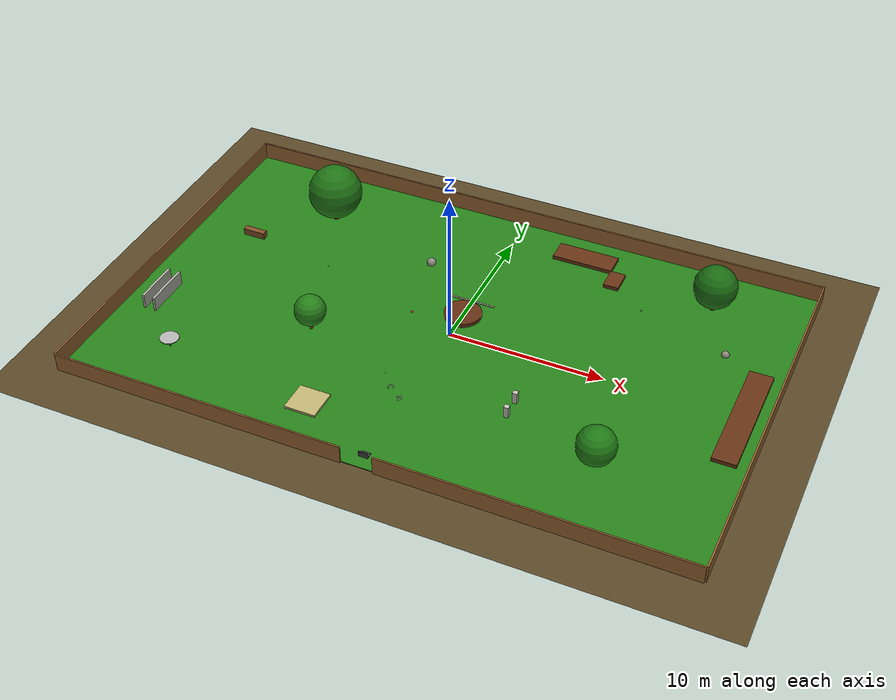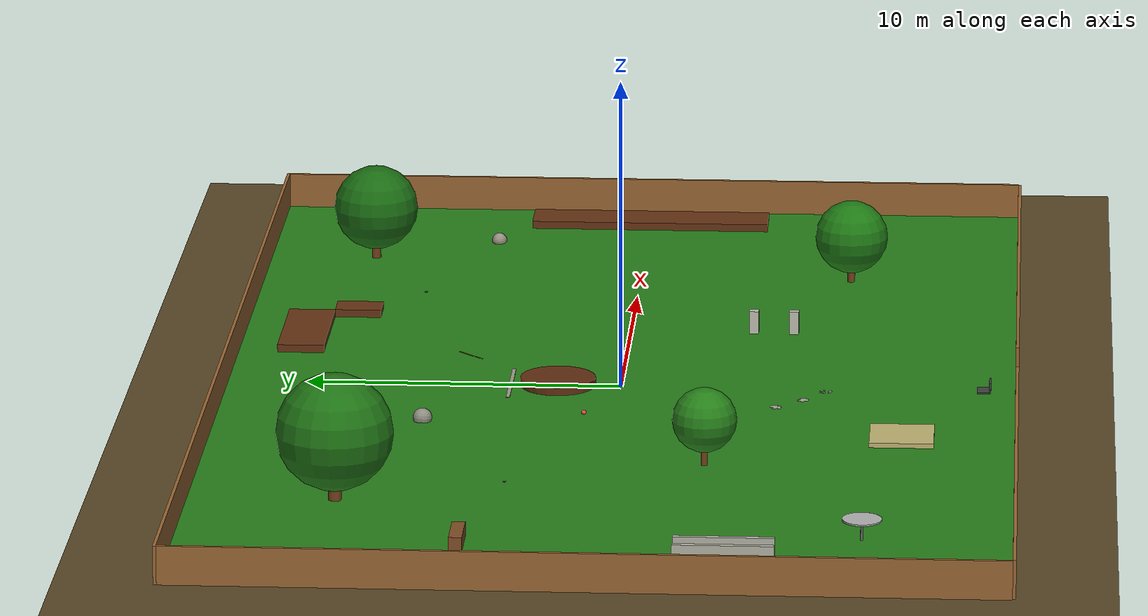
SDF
<?xml version="1.0"?>
<sdf version="1.10">
  <world name="lawn_1000sqm">
    <physics name="1ms" type="ignored">
      <max_step_size>0.001</max_step_size>
      <real_time_factor>1</real_time_factor>
      <real_time_update_rate>1000</real_time_update_rate>
    </physics>

    <plugin name="gz::sim::systems::Physics" filename="gz-sim-physics-system"/>
    <plugin name="gz::sim::systems::UserCommands" filename="gz-sim-user-commands-system"/>
    <plugin name="gz::sim::systems::SceneBroadcaster" filename="gz-sim-scene-broadcaster-system"/>
    <plugin name="gz::sim::systems::Contact" filename="gz-sim-contact-system"/>
    <plugin name="gz::sim::systems::Sensors" filename="gz-sim-sensors-system">
      <render_engine>ogre2</render_engine>
    </plugin>
    <plugin name="gz::sim::systems::Imu" filename="gz-sim-imu-system"/>

    <gravity>0 0 -9.8</gravity>
    <magnetic_field>5.5645e-06 2.28758e-05 -4.23884e-05</magnetic_field>
    <atmosphere type="adiabatic"/>

    <scene>
      <ambient>0.5 0.5 0.5 1</ambient>
      <background>0.55 0.75 0.95 1</background>
      <shadows>true</shadows>
    </scene>

    <!-- Sun -->
    <light name="sun" type="directional">
      <pose>0 0 20 0 0 0</pose>
      <cast_shadows>true</cast_shadows>
      <intensity>1.0</intensity>
      <direction>-0.4 0.2 -0.9</direction>
      <diffuse>0.9 0.88 0.8 1</diffuse>
      <specular>0.3 0.3 0.3 1</specular>
      <attenuation>
        <range>1000</range>
        <linear>0.005</linear>
        <constant>0.95</constant>
        <quadratic>0.0005</quadratic>
      </attenuation>
    </light>

    <!-- Ground plane (extends beyond the lawn) -->
    <model name="ground_plane">
      <static>true</static>
      <link name="link">
        <collision name="collision">
          <geometry><plane><normal>0 0 1</normal><size>80 60</size></plane></geometry>
        </collision>
        <visual name="visual">
          <geometry><plane><normal>0 0 1</normal><size>80 60</size></plane></geometry>
          <material>
            <ambient>0.25 0.20 0.12 1</ambient>
            <diffuse>0.35 0.28 0.15 1</diffuse>
            <specular>0.02 0.02 0.02 1</specular>
          </material>
        </visual>
      </link>
    </model>

    <!--
      Lawn area: 40 m x 25 m = 1000 m²
      Origin at center of lawn.
      Boundary fence height: 1.2 m (typical residential fence)
    -->
    <model name="lawn_1000sqm">
      <static>true</static>

      <!-- Grass floor 40m x 25m -->
      <link name="grass">
        <pose>0 0 0.025 0 0 0</pose>
        <collision name="collision">
          <geometry><box><size>40 25 0.05</size></box></geometry>
        </collision>
        <visual name="visual">
          <geometry><box><size>40 25 0.05</size></box></geometry>
          <material>
            <ambient>0.10 0.32 0.06 1</ambient>
            <diffuse>0.15 0.50 0.10 1</diffuse>
            <specular>0.08 0.08 0.08 1</specular>
          </material>
        </visual>
      </link>

      <!-- ===== Boundary fence (wood style, 1.2m high, 0.1m thick) ===== -->
      <!-- North fence -->
      <link name="fence_north">
        <pose>0 12.55 0.6 0 0 0</pose>
        <collision name="collision">
          <geometry><box><size>40.2 0.1 1.2</size></box></geometry>
        </collision>
        <visual name="visual">
          <geometry><box><size>40.2 0.1 1.2</size></box></geometry>
          <material>
            <ambient>0.45 0.30 0.15 1</ambient>
            <diffuse>0.60 0.40 0.20 1</diffuse>
            <specular>0.05 0.05 0.05 1</specular>
          </material>
        </visual>
      </link>

      <!-- South fence (split for 2m gate opening, centered) -->
      <link name="fence_south_left">
        <pose>-10.5 -12.55 0.6 0 0 0</pose>
        <collision name="collision">
          <geometry><box><size>19 0.1 1.2</size></box></geometry>
        </collision>
        <visual name="visual">
          <geometry><box><size>19 0.1 1.2</size></box></geometry>
          <material>
            <ambient>0.45 0.30 0.15 1</ambient>
            <diffuse>0.60 0.40 0.20 1</diffuse>
            <specular>0.05 0.05 0.05 1</specular>
          </material>
        </visual>
      </link>
      <link name="fence_south_right">
        <pose>10.5 -12.55 0.6 0 0 0</pose>
        <collision name="collision">
          <geometry><box><size>19 0.1 1.2</size></box></geometry>
        </collision>
        <visual name="visual">
          <geometry><box><size>19 0.1 1.2</size></box></geometry>
          <material>
            <ambient>0.45 0.30 0.15 1</ambient>
            <diffuse>0.60 0.40 0.20 1</diffuse>
            <specular>0.05 0.05 0.05 1</specular>
          </material>
        </visual>
      </link>

      <!-- West fence -->
      <link name="fence_west">
        <pose>-20.05 0 0.6 0 0 0</pose>
        <collision name="collision">
          <geometry><box><size>0.1 25 1.2</size></box></geometry>
        </collision>
        <visual name="visual">
          <geometry><box><size>0.1 25 1.2</size></box></geometry>
          <material>
            <ambient>0.45 0.30 0.15 1</ambient>
            <diffuse>0.60 0.40 0.20 1</diffuse>
            <specular>0.05 0.05 0.05 1</specular>
          </material>
        </visual>
      </link>

      <!-- East fence -->
      <link name="fence_east">
        <pose>20.05 0 0.6 0 0 0</pose>
        <collision name="collision">
          <geometry><box><size>0.1 25 1.2</size></box></geometry>
        </collision>
        <visual name="visual">
          <geometry><box><size>0.1 25 1.2</size></box></geometry>
          <material>
            <ambient>0.45 0.30 0.15 1</ambient>
            <diffuse>0.60 0.40 0.20 1</diffuse>
            <specular>0.05 0.05 0.05 1</specular>
          </material>
        </visual>
      </link>
    </model>

    <!-- ===== Obstacles: Trees (cylindrical trunks + sphere canopy) ===== -->

    <!-- Tree 1: large oak, northwest area -->
    <model name="tree_1">
      <static>true</static>
      <link name="trunk">
        <pose>-12 8 0.75 0 0 0</pose>
        <collision name="collision">
          <geometry><cylinder><radius>0.2</radius><length>1.5</length></cylinder></geometry>
        </collision>
        <visual name="visual">
          <geometry><cylinder><radius>0.2</radius><length>1.5</length></cylinder></geometry>
          <material>
            <ambient>0.30 0.18 0.08 1</ambient>
            <diffuse>0.45 0.25 0.10 1</diffuse>
          </material>
        </visual>
      </link>
      <link name="canopy">
        <pose>-12 8 2.2 0 0 0</pose>
        <visual name="visual">
          <geometry><sphere><radius>1.8</radius></sphere></geometry>
          <material>
            <ambient>0.08 0.30 0.05 1</ambient>
            <diffuse>0.12 0.45 0.08 1</diffuse>
          </material>
        </visual>
      </link>
    </model>

    <!-- Tree 2: medium tree, northeast -->
    <model name="tree_2">
      <static>true</static>
      <link name="trunk">
        <pose>14 9 0.6 0 0 0</pose>
        <collision name="collision">
          <geometry><cylinder><radius>0.15</radius><length>1.2</length></cylinder></geometry>
        </collision>
        <visual name="visual">
          <geometry><cylinder><radius>0.15</radius><length>1.2</length></cylinder></geometry>
          <material>
            <ambient>0.30 0.18 0.08 1</ambient>
            <diffuse>0.45 0.25 0.10 1</diffuse>
          </material>
        </visual>
      </link>
      <link name="canopy">
        <pose>14 9 1.8 0 0 0</pose>
        <visual name="visual">
          <geometry><sphere><radius>1.4</radius></sphere></geometry>
          <material>
            <ambient>0.06 0.28 0.04 1</ambient>
            <diffuse>0.10 0.42 0.07 1</diffuse>
          </material>
        </visual>
      </link>
    </model>

    <!-- Tree 3: small ornamental tree, center-west -->
    <model name="tree_3">
      <static>true</static>
      <link name="trunk">
        <pose>-8 -3 0.5 0 0 0</pose>
        <collision name="collision">
          <geometry><cylinder><radius>0.1</radius><length>1.0</length></cylinder></geometry>
        </collision>
        <visual name="visual">
          <geometry><cylinder><radius>0.1</radius><length>1.0</length></cylinder></geometry>
          <material>
            <ambient>0.30 0.18 0.08 1</ambient>
            <diffuse>0.45 0.25 0.10 1</diffuse>
          </material>
        </visual>
      </link>
      <link name="canopy">
        <pose>-8 -3 1.5 0 0 0</pose>
        <visual name="visual">
          <geometry><sphere><radius>1.0</radius></sphere></geometry>
          <material>
            <ambient>0.10 0.35 0.06 1</ambient>
            <diffuse>0.15 0.50 0.10 1</diffuse>
          </material>
        </visual>
      </link>
    </model>

    <!-- Tree 4: fruit tree, southeast -->
    <model name="tree_4">
      <static>true</static>
      <link name="trunk">
        <pose>12 -7 0.55 0 0 0</pose>
        <collision name="collision">
          <geometry><cylinder><radius>0.12</radius><length>1.1</length></cylinder></geometry>
        </collision>
        <visual name="visual">
          <geometry><cylinder><radius>0.12</radius><length>1.1</length></cylinder></geometry>
          <material>
            <ambient>0.30 0.18 0.08 1</ambient>
            <diffuse>0.45 0.25 0.10 1</diffuse>
          </material>
        </visual>
      </link>
      <link name="canopy">
        <pose>12 -7 1.6 0 0 0</pose>
        <visual name="visual">
          <geometry><sphere><radius>1.2</radius></sphere></geometry>
          <material>
            <ambient>0.08 0.32 0.05 1</ambient>
            <diffuse>0.12 0.48 0.08 1</diffuse>
          </material>
        </visual>
      </link>
    </model>

    <!-- ===== Flower beds (rectangular raised borders, impassable) ===== -->

    <!-- Flower bed 1: L-shaped garden near north fence -->
    <model name="flower_bed_1">
      <static>true</static>
      <link name="bed_long">
        <pose>5 10.5 0.15 0 0 0</pose>
        <collision name="collision">
          <geometry><box><size>4.0 1.5 0.3</size></box></geometry>
        </collision>
        <visual name="visual">
          <geometry><box><size>4.0 1.5 0.3</size></box></geometry>
          <material>
            <ambient>0.25 0.12 0.05 1</ambient>
            <diffuse>0.40 0.20 0.08 1</diffuse>
          </material>
        </visual>
      </link>
      <link name="bed_short">
        <pose>7.5 9.0 0.15 0 0 0</pose>
        <collision name="collision">
          <geometry><box><size>1.0 1.5 0.3</size></box></geometry>
        </collision>
        <visual name="visual">
          <geometry><box><size>1.0 1.5 0.3</size></box></geometry>
          <material>
            <ambient>0.25 0.12 0.05 1</ambient>
            <diffuse>0.40 0.20 0.08 1</diffuse>
          </material>
        </visual>
      </link>
    </model>

    <!-- Flower bed 2: circular garden, center area -->
    <model name="flower_bed_2">
      <static>true</static>
      <link name="bed">
        <pose>0 2 0.15 0 0 0</pose>
        <collision name="collision">
          <geometry><cylinder><radius>1.2</radius><length>0.3</length></cylinder></geometry>
        </collision>
        <visual name="visual">
          <geometry><cylinder><radius>1.2</radius><length>0.3</length></cylinder></geometry>
          <material>
            <ambient>0.22 0.10 0.04 1</ambient>
            <diffuse>0.38 0.18 0.07 1</diffuse>
          </material>
        </visual>
      </link>
    </model>

    <!-- Flower bed 3: rectangular along east fence -->
    <model name="flower_bed_3">
      <static>true</static>
      <link name="bed">
        <pose>18.5 0 0.15 0 0 0</pose>
        <collision name="collision">
          <geometry><box><size>1.5 8.0 0.3</size></box></geometry>
        </collision>
        <visual name="visual">
          <geometry><box><size>1.5 8.0 0.3</size></box></geometry>
          <material>
            <ambient>0.25 0.12 0.05 1</ambient>
            <diffuse>0.40 0.20 0.08 1</diffuse>
          </material>
        </visual>
      </link>
    </model>

    <!-- ===== Garden furniture / obstacles ===== -->

    <!-- Patio table with 4 legs -->
    <model name="patio_table">
      <static>true</static>
      <link name="tabletop">
        <pose>-15 -8 0.7 0 0 0</pose>
        <collision name="collision">
          <geometry><cylinder><radius>0.6</radius><length>0.05</length></cylinder></geometry>
        </collision>
        <visual name="visual">
          <geometry><cylinder><radius>0.6</radius><length>0.05</length></cylinder></geometry>
          <material>
            <ambient>0.5 0.5 0.5 1</ambient>
            <diffuse>0.7 0.7 0.7 1</diffuse>
          </material>
        </visual>
      </link>
      <link name="leg">
        <pose>-15 -8 0.35 0 0 0</pose>
        <collision name="collision">
          <geometry><cylinder><radius>0.04</radius><length>0.7</length></cylinder></geometry>
        </collision>
        <visual name="visual">
          <geometry><cylinder><radius>0.04</radius><length>0.7</length></cylinder></geometry>
          <material>
            <ambient>0.3 0.3 0.3 1</ambient>
            <diffuse>0.4 0.4 0.4 1</diffuse>
          </material>
        </visual>
      </link>
    </model>

    <!-- Garden bench -->
    <model name="garden_bench">
      <static>true</static>
      <link name="seat">
        <pose>-16 4 0.25 0 0 0</pose>
        <collision name="collision">
          <geometry><box><size>1.5 0.4 0.5</size></box></geometry>
        </collision>
        <visual name="visual">
          <geometry><box><size>1.5 0.4 0.5</size></box></geometry>
          <material>
            <ambient>0.35 0.22 0.10 1</ambient>
            <diffuse>0.50 0.30 0.15 1</diffuse>
          </material>
        </visual>
      </link>
    </model>

    <!-- ===== Charging station (home base) near south gate ===== -->
    <model name="charging_station">
      <static>true</static>
      <link name="base">
        <pose>0 -11.5 0.05 0 0 0</pose>
        <collision name="collision">
          <geometry><box><size>0.6 0.4 0.1</size></box></geometry>
        </collision>
        <visual name="visual">
          <geometry><box><size>0.6 0.4 0.1</size></box></geometry>
          <material>
            <ambient>0.15 0.15 0.15 1</ambient>
            <diffuse>0.25 0.25 0.25 1</diffuse>
          </material>
        </visual>
      </link>
      <link name="canopy_post">
        <pose>0 -11.7 0.2 0 0 0</pose>
        <collision name="collision">
          <geometry><box><size>0.6 0.05 0.4</size></box></geometry>
        </collision>
        <visual name="visual">
          <geometry><box><size>0.6 0.05 0.4</size></box></geometry>
          <material>
            <ambient>0.15 0.15 0.15 1</ambient>
            <diffuse>0.25 0.25 0.25 1</diffuse>
          </material>
        </visual>
      </link>
    </model>

    <!-- ===== Narrow passage 1: two pillars creating a 1m gap (garden arch) ===== -->
    <model name="narrow_passage_1m">
      <static>true</static>
      <link name="pillar_left">
        <pose>6 -4 0.4 0 0 0</pose>
        <collision name="collision">
          <geometry><box><size>0.3 0.3 0.8</size></box></geometry>
        </collision>
        <visual name="visual">
          <geometry><box><size>0.3 0.3 0.8</size></box></geometry>
          <material>
            <ambient>0.6 0.6 0.55 1</ambient>
            <diffuse>0.75 0.75 0.70 1</diffuse>
          </material>
        </visual>
      </link>
      <link name="pillar_right">
        <pose>6 -5.3 0.4 0 0 0</pose>
        <collision name="collision">
          <geometry><box><size>0.3 0.3 0.8</size></box></geometry>
        </collision>
        <visual name="visual">
          <geometry><box><size>0.3 0.3 0.8</size></box></geometry>
          <material>
            <ambient>0.6 0.6 0.55 1</ambient>
            <diffuse>0.75 0.75 0.70 1</diffuse>
          </material>
        </visual>
      </link>
    </model>

    <!-- ===== Narrow corridor: 60cm wide, 3m long (simulating house side-passage) ===== -->
    <model name="narrow_corridor_60cm">
      <static>true</static>
      <link name="wall_left">
        <pose>-18.5 -4 0.5 0 0 0</pose>
        <collision name="collision">
          <geometry><box><size>0.15 3.0 1.0</size></box></geometry>
        </collision>
        <visual name="visual">
          <geometry><box><size>0.15 3.0 1.0</size></box></geometry>
          <material>
            <ambient>0.55 0.55 0.52 1</ambient>
            <diffuse>0.70 0.70 0.65 1</diffuse>
          </material>
        </visual>
      </link>
      <link name="wall_right">
        <pose>-17.75 -4 0.5 0 0 0</pose>
        <collision name="collision">
          <geometry><box><size>0.15 3.0 1.0</size></box></geometry>
        </collision>
        <visual name="visual">
          <geometry><box><size>0.15 3.0 1.0</size></box></geometry>
          <material>
            <ambient>0.55 0.55 0.52 1</ambient>
            <diffuse>0.70 0.70 0.65 1</diffuse>
          </material>
        </visual>
      </link>
    </model>

    <!-- ===== Rock / boulder obstacles ===== -->
    <model name="rock_1">
      <static>true</static>
      <link name="rock">
        <pose>-4 6 0.15 0.1 0.05 0.3</pose>
        <collision name="collision">
          <geometry><sphere><radius>0.3</radius></sphere></geometry>
        </collision>
        <visual name="visual">
          <geometry><sphere><radius>0.3</radius></sphere></geometry>
          <material>
            <ambient>0.4 0.4 0.38 1</ambient>
            <diffuse>0.55 0.55 0.50 1</diffuse>
          </material>
        </visual>
      </link>
    </model>

    <model name="rock_2">
      <static>true</static>
      <link name="rock">
        <pose>16 5 0.12 -0.05 0.1 0.7</pose>
        <collision name="collision">
          <geometry><sphere><radius>0.25</radius></sphere></geometry>
        </collision>
        <visual name="visual">
          <geometry><sphere><radius>0.25</radius></sphere></geometry>
          <material>
            <ambient>0.45 0.42 0.38 1</ambient>
            <diffuse>0.58 0.55 0.50 1</diffuse>
          </material>
        </visual>
      </link>
    </model>

    <!-- ===== Sandbox (kids play area, impassable) ===== -->
    <model name="sandbox">
      <static>true</static>
      <link name="box">
        <pose>-5 -9 0.1 0 0 0</pose>
        <collision name="collision">
          <geometry><box><size>2.0 2.0 0.2</size></box></geometry>
        </collision>
        <visual name="visual">
          <geometry><box><size>2.0 2.0 0.2</size></box></geometry>
          <material>
            <ambient>0.6 0.55 0.35 1</ambient>
            <diffuse>0.75 0.70 0.45 1</diffuse>
          </material>
        </visual>
      </link>
    </model>

    <!-- ===== Garden hose (low obstacle, line on ground) ===== -->
    <model name="garden_hose">
      <static>true</static>
      <link name="hose">
        <pose>8 3 0.02 0 0 0.4</pose>
        <collision name="collision">
          <geometry><box><size>5.0 0.04 0.04</size></box></geometry>
        </collision>
        <visual name="visual">
          <geometry><box><size>5.0 0.04 0.04</size></box></geometry>
          <material>
            <ambient>0.1 0.5 0.1 1</ambient>
            <diffuse>0.15 0.7 0.15 1</diffuse>
          </material>
        </visual>
      </link>
    </model>

    <!-- ===== Stepping stones (path across lawn) ===== -->
    <model name="stepping_stone_1">
      <static>true</static>
      <link name="stone">
        <pose>-2 -5 0.025 0 0 0.2</pose>
        <collision name="collision">
          <geometry><cylinder><radius>0.2</radius><length>0.05</length></cylinder></geometry>
        </collision>
        <visual name="visual">
          <geometry><cylinder><radius>0.2</radius><length>0.05</length></cylinder></geometry>
          <material>
            <ambient>0.5 0.5 0.48 1</ambient>
            <diffuse>0.65 0.65 0.60 1</diffuse>
          </material>
        </visual>
      </link>
    </model>
    <model name="stepping_stone_2">
      <static>true</static>
      <link name="stone">
        <pose>-1.2 -5.8 0.025 0 0 -0.1</pose>
        <collision name="collision">
          <geometry><cylinder><radius>0.2</radius><length>0.05</length></cylinder></geometry>
        </collision>
        <visual name="visual">
          <geometry><cylinder><radius>0.2</radius><length>0.05</length></cylinder></geometry>
          <material>
            <ambient>0.5 0.5 0.48 1</ambient>
            <diffuse>0.65 0.65 0.60 1</diffuse>
          </material>
        </visual>
      </link>
    </model>
    <model name="stepping_stone_3">
      <static>true</static>
      <link name="stone">
        <pose>-0.3 -6.5 0.025 0 0 0.3</pose>
        <collision name="collision">
          <geometry><cylinder><radius>0.2</radius><length>0.05</length></cylinder></geometry>
        </collision>
        <visual name="visual">
          <geometry><cylinder><radius>0.2</radius><length>0.05</length></cylinder></geometry>
          <material>
            <ambient>0.5 0.5 0.48 1</ambient>
            <diffuse>0.65 0.65 0.60 1</diffuse>
          </material>
        </visual>
      </link>
    </model>

    <!-- ===== Sprinkler heads (low ground obstacles, barely visible) ===== -->
    <model name="sprinkler_1">
      <static>true</static>
      <link name="head">
        <pose>-10 3 0.03 0 0 0</pose>
        <collision name="collision">
          <geometry><cylinder><radius>0.05</radius><length>0.06</length></cylinder></geometry>
        </collision>
        <visual name="visual">
          <geometry><cylinder><radius>0.05</radius><length>0.06</length></cylinder></geometry>
          <material>
            <ambient>0.3 0.3 0.3 1</ambient>
            <diffuse>0.4 0.4 0.4 1</diffuse>
          </material>
        </visual>
      </link>
    </model>
    <model name="sprinkler_2">
      <static>true</static>
      <link name="head">
        <pose>10 7 0.03 0 0 0</pose>
        <collision name="collision">
          <geometry><cylinder><radius>0.05</radius><length>0.06</length></cylinder></geometry>
        </collision>
        <visual name="visual">
          <geometry><cylinder><radius>0.05</radius><length>0.06</length></cylinder></geometry>
          <material>
            <ambient>0.3 0.3 0.3 1</ambient>
            <diffuse>0.4 0.4 0.4 1</diffuse>
          </material>
        </visual>
      </link>
    </model>

    <!-- ===== Fallen branch (temporary obstacle on grass) ===== -->
    <model name="fallen_branch">
      <static>true</static>
      <link name="branch">
        <pose>3 5 0.025 0 0 0.8</pose>
        <collision name="collision">
          <geometry><box><size>1.2 0.05 0.05</size></box></geometry>
        </collision>
        <visual name="visual">
          <geometry><box><size>1.2 0.05 0.05</size></box></geometry>
          <material>
            <ambient>0.30 0.18 0.08 1</ambient>
            <diffuse>0.42 0.24 0.10 1</diffuse>
          </material>
        </visual>
      </link>
    </model>

    <!-- ===== Child's toy (small random obstacle) ===== -->
    <model name="toy_ball">
      <static>true</static>
      <link name="ball">
        <pose>-3 1 0.08 0 0 0</pose>
        <collision name="collision">
          <geometry><sphere><radius>0.08</radius></sphere></geometry>
        </collision>
        <visual name="visual">
          <geometry><sphere><radius>0.08</radius></sphere></geometry>
          <material>
            <ambient>0.8 0.2 0.2 1</ambient>
            <diffuse>0.95 0.3 0.3 1</diffuse>
          </material>
        </visual>
      </link>
    </model>

    <!-- ===== Lawn edge stones (border between grass and flower bed) ===== -->
    <model name="edge_stones">
      <static>true</static>
      <link name="stones">
        <pose>0 3.5 0.04 0 0 0</pose>
        <collision name="collision">
          <geometry><box><size>3.0 0.12 0.08</size></box></geometry>
        </collision>
        <visual name="visual">
          <geometry><box><size>3.0 0.12 0.08</size></box></geometry>
          <material>
            <ambient>0.5 0.48 0.44 1</ambient>
            <diffuse>0.62 0.60 0.55 1</diffuse>
          </material>
        </visual>
      </link>
    </model>

  </world>
</sdf>
